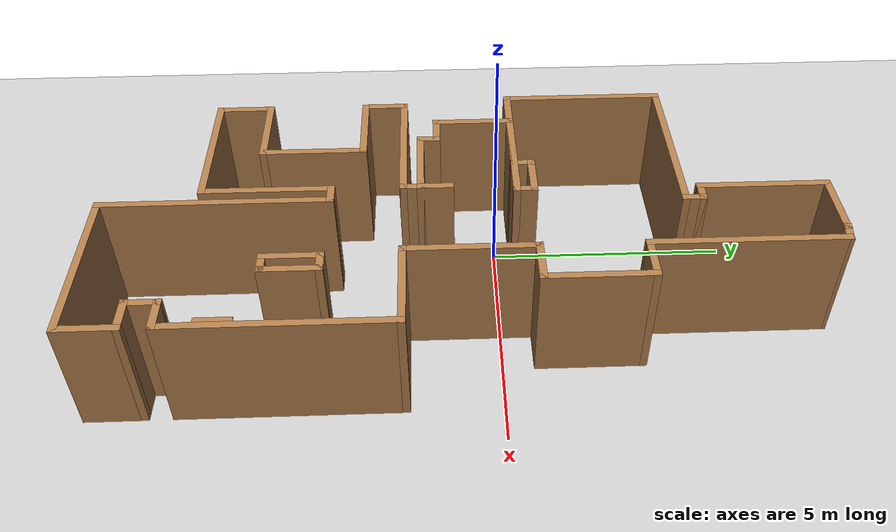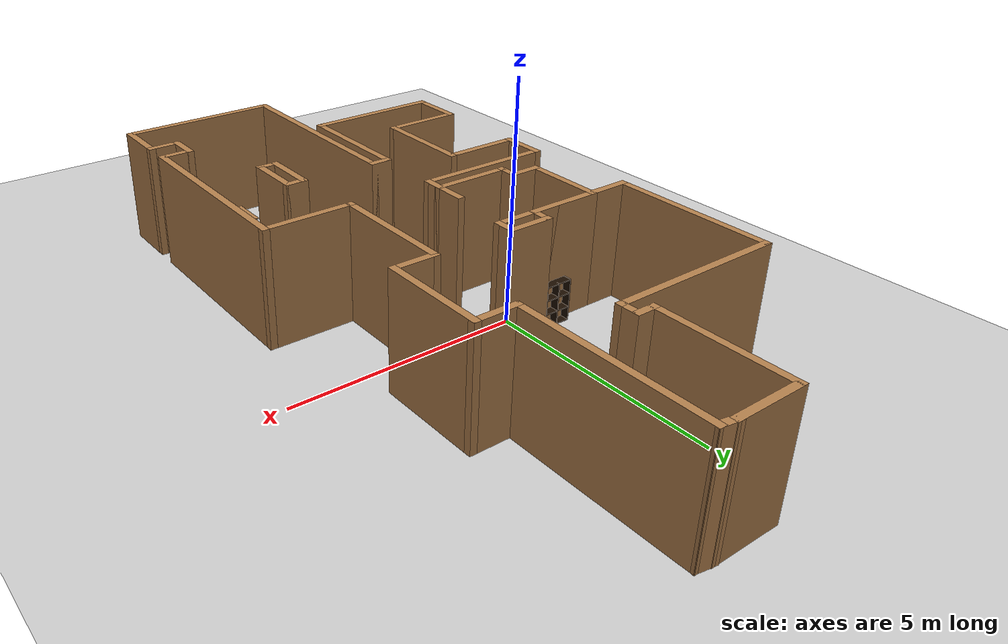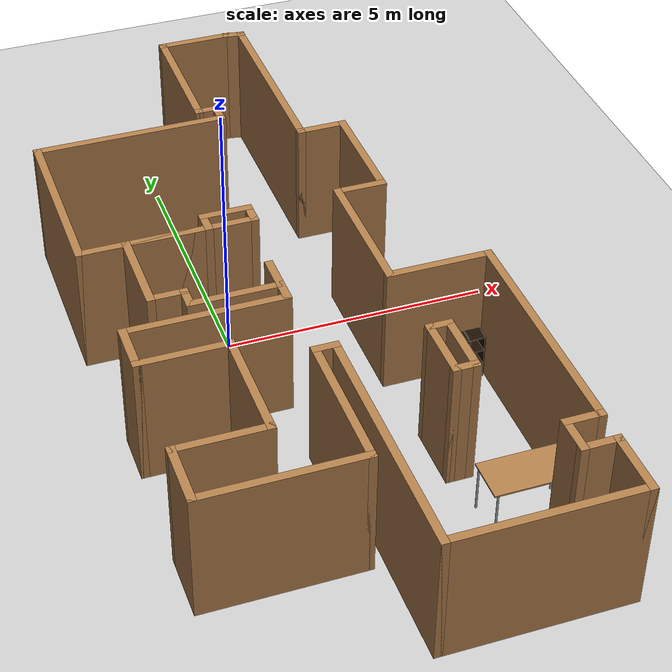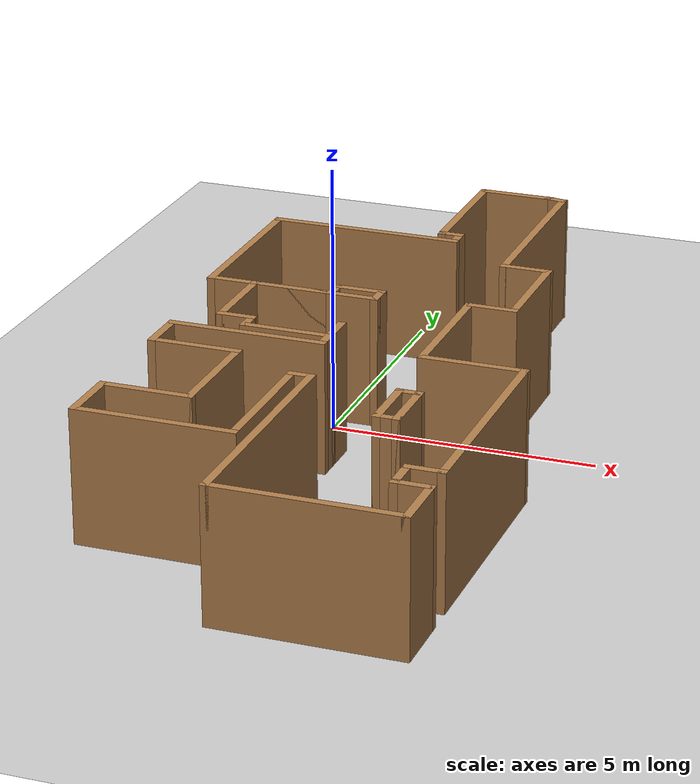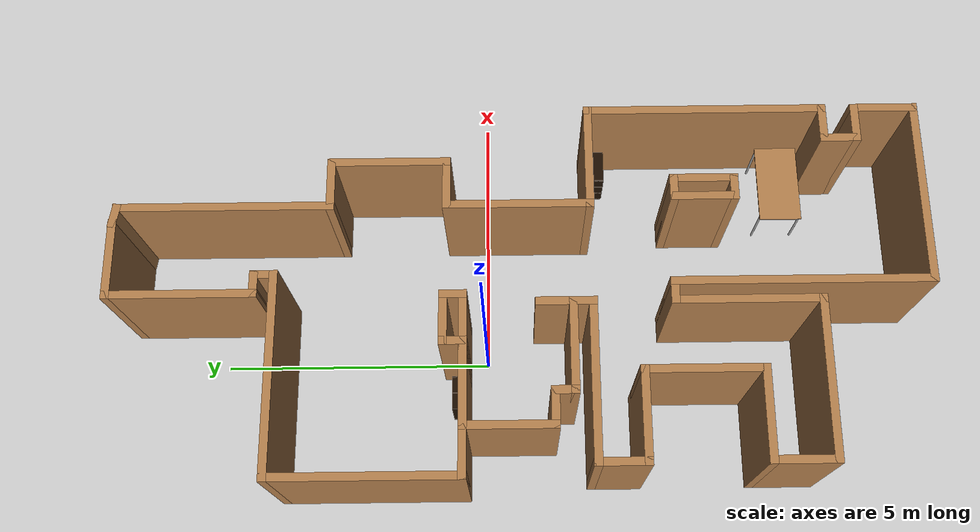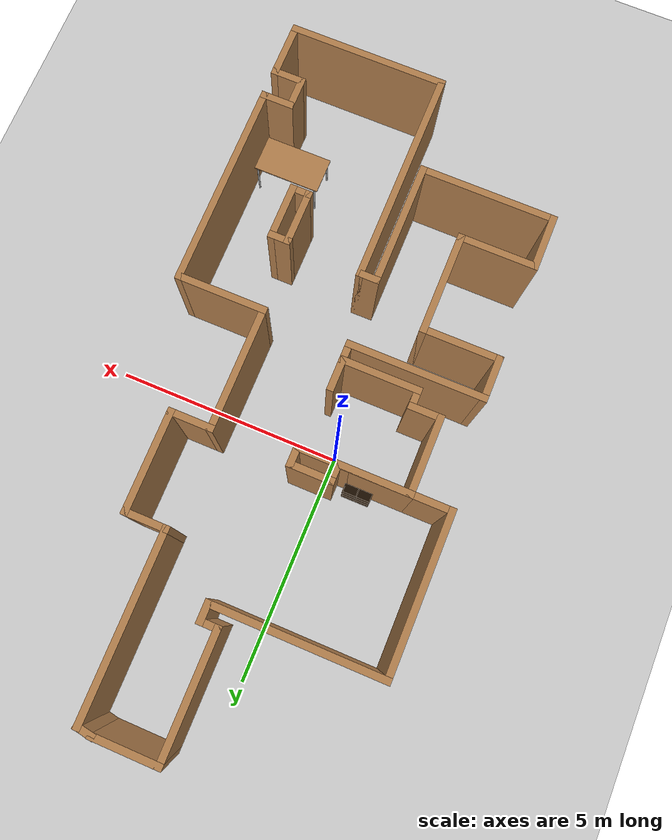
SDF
<sdf version="1.6">
 <world name="default">
  <light name="sun" type="directional">
   <pose>0 0 10 0 -0 0</pose>
   <diffuse>0.8 0.8 0.8 1</diffuse>
   <specular>0.2 0.2 0.2 1</specular>
   <attenuation>
    <range>1000</range>
    <constant>0.9</constant>
    <linear>0.01</linear>
    <quadratic>0.001</quadratic>
   </attenuation>
   <direction>-0.5 0.1 -0.9</direction>
  </light>
  <model name="ground_plane">
   <static>1</static>
   <link name="link">
    <collision name="collision">
     <geometry><plane><normal>0 0 1</normal><size>100 100</size></plane></geometry>
     <surface>
      <contact><collide_bitmask>65535</collide_bitmask></contact>
      <friction><ode><mu>100</mu><mu2>50</mu2></ode></friction>
     </surface>
    </collision>
    <visual name="visual">
     <cast_shadows>0</cast_shadows>
     <geometry><plane><normal>0 0 1</normal><size>100 100</size></plane></geometry>
     <material>
      <script><uri>file://media/materials/scripts/gazebo.material</uri><name>Gazebo/Grey</name></script>
     </material>
    </visual>
   </link>
  </model>
  <gravity>0 0 -9.8</gravity>
  <magnetic_field>6e-06 2.3e-05 -4.2e-05</magnetic_field>
  <atmosphere type="adiabatic"/>
  <physics name="default_physics" default="0" type="ode">
   <max_step_size>0.001</max_step_size>
   <real_time_factor>1</real_time_factor>
   <real_time_update_rate>1000</real_time_update_rate>
  </physics>
  <scene><ambient>0.4 0.4 0.4 1</ambient><background>0.7 0.7 0.7 1</background><shadows>1</shadows></scene>
  <audio><device>default</device></audio>
  <spherical_coordinates>
   <surface_model>EARTH_WGS84</surface_model>
   <latitude_deg>0</latitude_deg>
   <longitude_deg>0</longitude_deg>
   <elevation>0</elevation>
   <heading_deg>0</heading_deg>
  </spherical_coordinates>
  <model name="map_93">
   <pose>0.83846 -0.619151 0 0 -0 0</pose>
   <link name="Wall_0">
    <collision name="Wall_0_Collision">
     <geometry><box><size>1.5 0.15 2.5</size></box></geometry>
     <pose>0 0 1.25 0 -0 0</pose>
    </collision>
    <visual name="Wall_0_Visual">
     <pose>0 0 1.25 0 -0 0</pose>
     <geometry><box><size>1.5 0.15 2.5</size></box></geometry>
     <material>
      <script><uri>file://media/materials/scripts/gazebo.material</uri><name>Gazebo/Wood</name></script>
      <ambient>1 1 1 1</ambient>
     </material>
     <meta><layer>0</layer></meta>
    </visual>
    <pose>0.55 7.31935 0 0 -0 3.14159</pose>
   </link>
   <link name="Wall_1">
    <collision name="Wall_1_Collision">
     <geometry><box><size>2.75 0.15 2.5</size></box></geometry>
     <pose>0 0 1.25 0 -0 0</pose>
    </collision>
    <visual name="Wall_1_Visual">
     <pose>0 0 1.25 0 -0 0</pose>
     <geometry><box><size>2.75 0.15 2.5</size></box></geometry>
     <material>
      <script><uri>file://media/materials/scripts/gazebo.material</uri><name>Gazebo/Wood</name></script>
      <ambient>1 1 1 1</ambient>
     </material>
     <meta><layer>0</layer></meta>
    </visual>
    <pose>-0.125 6.01935 0 0 -0 -1.5708</pose>
   </link>
   <link name="Wall_10">
    <collision name="Wall_10_Collision">
     <geometry><box><size>1 0.15 2.5</size></box></geometry>
     <pose>0 0 1.25 0 -0 0</pose>
    </collision>
    <visual name="Wall_10_Visual">
     <pose>0 0 1.25 0 -0 0</pose>
     <geometry><box><size>1 0.15 2.5</size></box></geometry>
     <material>
      <script><uri>file://media/materials/scripts/gazebo.material</uri><name>Gazebo/Wood</name></script>
      <ambient>1 1 1 1</ambient>
     </material>
     <meta><layer>0</layer></meta>
    </visual>
    <pose>-0.6 1.36935 0 0 -0 0</pose>
   </link>
   <link name="Wall_11">
    <collision name="Wall_11_Collision">
     <geometry><box><size>0.5 0.15 2.5</size></box></geometry>
     <pose>0 0 1.25 0 -0 0</pose>
    </collision>
    <visual name="Wall_11_Visual">
     <pose>0 0 1.25 0 -0 0</pose>
     <geometry><box><size>0.5 0.15 2.5</size></box></geometry>
     <material>
      <script><uri>file://media/materials/scripts/gazebo.material</uri><name>Gazebo/Wood</name></script>
      <ambient>1 1 1 1</ambient>
     </material>
     <meta><layer>0</layer></meta>
    </visual>
    <pose>-0.175 1.19434 0 0 -0 -1.5708</pose>
   </link>
   <link name="Wall_12">
    <collision name="Wall_12_Collision">
     <geometry><box><size>2.5 0.15 2.5</size></box></geometry>
     <pose>0 0 1.25 0 -0 0</pose>
    </collision>
    <visual name="Wall_12_Visual">
     <pose>0 0 1.25 0 -0 0</pose>
     <geometry><box><size>2.5 0.15 2.5</size></box></geometry>
     <material>
      <script><uri>file://media/materials/scripts/gazebo.material</uri><name>Gazebo/Wood</name></script>
      <ambient>1 1 1 1</ambient>
     </material>
     <meta><layer>0</layer></meta>
    </visual>
    <pose>-1.35 1.01935 0 0 -0 3.14159</pose>
   </link>
   <link name="Wall_13">
    <collision name="Wall_13_Collision">
     <geometry><box><size>1.75 0.15 2.5</size></box></geometry>
     <pose>0 0 1.25 0 -0 0</pose>
    </collision>
    <visual name="Wall_13_Visual">
     <pose>0 0 1.25 0 -0 0</pose>
     <geometry><box><size>1.75 0.15 2.5</size></box></geometry>
     <material>
      <script><uri>file://media/materials/scripts/gazebo.material</uri><name>Gazebo/Wood</name></script>
      <ambient>1 1 1 1</ambient>
     </material>
     <meta><layer>0</layer></meta>
    </visual>
    <pose>-2.525 0.219345 0 0 -0 -1.5708</pose>
   </link>
   <link name="Wall_14">
    <collision name="Wall_14_Collision">
     <geometry><box><size>0.75 0.15 2.5</size></box></geometry>
     <pose>0 0 1.25 0 -0 0</pose>
    </collision>
    <visual name="Wall_14_Visual">
     <pose>0 0 1.25 0 -0 0</pose>
     <geometry><box><size>0.75 0.15 2.5</size></box></geometry>
     <material>
      <script><uri>file://media/materials/scripts/gazebo.material</uri><name>Gazebo/Wood</name></script>
      <ambient>1 1 1 1</ambient>
     </material>
     <meta><layer>0</layer></meta>
    </visual>
    <pose>-2.225 -0.580654 0 0 -0 0</pose>
   </link>
   <link name="Wall_15">
    <collision name="Wall_15_Collision">
     <geometry><box><size>0.5 0.15 2.5</size></box></geometry>
     <pose>0 0 1.25 0 -0 0</pose>
    </collision>
    <visual name="Wall_15_Visual">
     <pose>0 0 1.25 0 -0 0</pose>
     <geometry><box><size>0.5 0.15 2.5</size></box></geometry>
     <material>
      <script><uri>file://media/materials/scripts/gazebo.material</uri><name>Gazebo/Wood</name></script>
      <ambient>1 1 1 1</ambient>
     </material>
     <meta><layer>0</layer></meta>
    </visual>
    <pose>-1.925 -0.755655 0 0 -0 -1.5708</pose>
   </link>
   <link name="Wall_16">
    <collision name="Wall_16_Collision">
     <geometry><box><size>1.75 0.15 2.5</size></box></geometry>
     <pose>0 0 1.25 0 -0 0</pose>
    </collision>
    <visual name="Wall_16_Visual">
     <pose>0 0 1.25 0 -0 0</pose>
     <geometry><box><size>1.75 0.15 2.5</size></box></geometry>
     <material>
      <script><uri>file://media/materials/scripts/gazebo.material</uri><name>Gazebo/Wood</name></script>
      <ambient>1 1 1 1</ambient>
     </material>
     <meta><layer>0</layer></meta>
    </visual>
    <pose>-1.125 -0.930655 0 0 -0 0</pose>
   </link>
   <link name="Wall_17">
    <collision name="Wall_17_Collision">
     <geometry><box><size>0.75 0.15 2.5</size></box></geometry>
     <pose>0 0 1.25 0 -0 0</pose>
    </collision>
    <visual name="Wall_17_Visual">
     <pose>0 0 1.25 0 -0 0</pose>
     <geometry><box><size>0.75 0.15 2.5</size></box></geometry>
     <material>
      <script><uri>file://media/materials/scripts/gazebo.material</uri><name>Gazebo/Wood</name></script>
      <ambient>1 1 1 1</ambient>
     </material>
     <meta><layer>0</layer></meta>
    </visual>
    <pose>-0.325 -0.630655 0 0 -0 1.5708</pose>
   </link>
   <link name="Wall_19">
    <collision name="Wall_19_Collision">
     <geometry><box><size>0.5 0.15 2.5</size></box></geometry>
     <pose>0 0 1.25 0 -0 0</pose>
    </collision>
    <visual name="Wall_19_Visual">
     <pose>0 0 1.25 0 -0 0</pose>
     <geometry><box><size>0.5 0.15 2.5</size></box></geometry>
     <material>
      <script><uri>file://media/materials/scripts/gazebo.material</uri><name>Gazebo/Wood</name></script>
      <ambient>1 1 1 1</ambient>
     </material>
     <meta><layer>0</layer></meta>
    </visual>
    <pose>-0.325 -1.10565 0 0 -0 -1.5708</pose>
   </link>
   <link name="Wall_2">
    <collision name="Wall_2_Collision">
     <geometry><box><size>0.5 0.15 2.5</size></box></geometry>
     <pose>0 0 1.25 0 -0 0</pose>
    </collision>
    <visual name="Wall_2_Visual">
     <pose>0 0 1.25 0 -0 0</pose>
     <geometry><box><size>0.5 0.15 2.5</size></box></geometry>
     <material>
      <script><uri>file://media/materials/scripts/gazebo.material</uri><name>Gazebo/Wood</name></script>
      <ambient>1 1 1 1</ambient>
     </material>
     <meta><layer>0</layer></meta>
    </visual>
    <pose>0.05 4.71935 0 0 -0 0</pose>
   </link>
   <link name="Wall_20">
    <collision name="Wall_20_Collision">
     <geometry><box><size>3 0.15 2.5</size></box></geometry>
     <pose>0 0 1.25 0 -0 0</pose>
    </collision>
    <visual name="Wall_20_Visual">
     <pose>0 0 1.25 0 -0 0</pose>
     <geometry><box><size>3 0.15 2.5</size></box></geometry>
     <material>
      <script><uri>file://media/materials/scripts/gazebo.material</uri><name>Gazebo/Wood</name></script>
      <ambient>1 1 1 1</ambient>
     </material>
     <meta><layer>0</layer></meta>
    </visual>
    <pose>-1.75 -1.28066 0 0 -0 3.14159</pose>
   </link>
   <link name="Wall_21">
    <collision name="Wall_21_Collision">
     <geometry><box><size>1 0.15 2.5</size></box></geometry>
     <pose>0 0 1.25 0 -0 0</pose>
    </collision>
    <visual name="Wall_21_Visual">
     <pose>0 0 1.25 0 -0 0</pose>
     <geometry><box><size>1 0.15 2.5</size></box></geometry>
     <material>
      <script><uri>file://media/materials/scripts/gazebo.material</uri><name>Gazebo/Wood</name></script>
      <ambient>1 1 1 1</ambient>
     </material>
     <meta><layer>0</layer></meta>
    </visual>
    <pose>-3.175 -1.70565 0 0 -0 -1.5708</pose>
   </link>
   <link name="Wall_22">
    <collision name="Wall_22_Collision">
     <geometry><box><size>1.75 0.15 2.5</size></box></geometry>
     <pose>0 0 1.25 0 -0 0</pose>
    </collision>
    <visual name="Wall_22_Visual">
     <pose>0 0 1.25 0 -0 0</pose>
     <geometry><box><size>1.75 0.15 2.5</size></box></geometry>
     <material>
      <script><uri>file://media/materials/scripts/gazebo.material</uri><name>Gazebo/Wood</name></script>
      <ambient>1 1 1 1</ambient>
     </material>
     <meta><layer>0</layer></meta>
    </visual>
    <pose>-2.375 -2.13065 0 0 -0 0</pose>
   </link>
   <link name="Wall_23">
    <collision name="Wall_23_Collision">
     <geometry><box><size>2.25 0.15 2.5</size></box></geometry>
     <pose>0 0 1.25 0 -0 0</pose>
    </collision>
    <visual name="Wall_23_Visual">
     <pose>0 0 1.25 0 -0 0</pose>
     <geometry><box><size>2.25 0.15 2.5</size></box></geometry>
     <material>
      <script><uri>file://media/materials/scripts/gazebo.material</uri><name>Gazebo/Wood</name></script>
      <ambient>1 1 1 1</ambient>
     </material>
     <meta><layer>0</layer></meta>
    </visual>
    <pose>-1.575 -3.18065 0 0 -0 -1.5708</pose>
   </link>
   <link name="Wall_24">
    <collision name="Wall_24_Collision">
     <geometry><box><size>1.75 0.15 2.5</size></box></geometry>
     <pose>0 0 1.25 0 -0 0</pose>
    </collision>
    <visual name="Wall_24_Visual">
     <pose>0 0 1.25 0 -0 0</pose>
     <geometry><box><size>1.75 0.15 2.5</size></box></geometry>
     <material>
      <script><uri>file://media/materials/scripts/gazebo.material</uri><name>Gazebo/Wood</name></script>
      <ambient>1 1 1 1</ambient>
     </material>
     <meta><layer>0</layer></meta>
    </visual>
    <pose>-2.375 -4.23065 0 0 -0 3.14159</pose>
   </link>
   <link name="Wall_25">
    <collision name="Wall_25_Collision">
     <geometry><box><size>1.25 0.15 2.5</size></box></geometry>
     <pose>0 0 1.25 0 -0 0</pose>
    </collision>
    <visual name="Wall_25_Visual">
     <pose>0 0 1.25 0 -0 0</pose>
     <geometry><box><size>1.25 0.15 2.5</size></box></geometry>
     <material>
      <script><uri>file://media/materials/scripts/gazebo.material</uri><name>Gazebo/Wood</name></script>
      <ambient>1 1 1 1</ambient>
     </material>
     <meta><layer>0</layer></meta>
    </visual>
    <pose>-3.175 -4.78065 0 0 -0 -1.5708</pose>
   </link>
   <link name="Wall_26">
    <collision name="Wall_26_Collision">
     <geometry><box><size>3 0.15 2.5</size></box></geometry>
     <pose>0 0 1.25 0 -0 0</pose>
    </collision>
    <visual name="Wall_26_Visual">
     <pose>0 0 1.25 0 -0 0</pose>
     <geometry><box><size>3 0.15 2.5</size></box></geometry>
     <material>
      <script><uri>file://media/materials/scripts/gazebo.material</uri><name>Gazebo/Wood</name></script>
      <ambient>1 1 1 1</ambient>
     </material>
     <meta><layer>0</layer></meta>
    </visual>
    <pose>-1.75 -5.33066 0 0 -0 0</pose>
   </link>
   <link name="Wall_27">
    <collision name="Wall_27_Collision">
     <geometry><box><size>2.75 0.15 2.5</size></box></geometry>
     <pose>0 0 1.25 0 -0 0</pose>
    </collision>
    <visual name="Wall_27_Visual">
     <pose>0 0 1.25 0 -0 0</pose>
     <geometry><box><size>2.75 0.15 2.5</size></box></geometry>
     <material>
      <script><uri>file://media/materials/scripts/gazebo.material</uri><name>Gazebo/Wood</name></script>
      <ambient>1 1 1 1</ambient>
     </material>
     <meta><layer>0</layer></meta>
    </visual>
    <pose>-0.325 -4.03066 0 0 -0 1.5708</pose>
   </link>
   <link name="Wall_28">
    <collision name="Wall_28_Collision">
     <geometry><box><size>0.5 0.15 2.5</size></box></geometry>
     <pose>0 0 1.25 0 -0 0</pose>
    </collision>
    <visual name="Wall_28_Visual">
     <pose>0 0 1.25 0 -0 0</pose>
     <geometry><box><size>0.5 0.15 2.5</size></box></geometry>
     <material>
      <script><uri>file://media/materials/scripts/gazebo.material</uri><name>Gazebo/Wood</name></script>
      <ambient>1 1 1 1</ambient>
     </material>
     <meta><layer>0</layer></meta>
    </visual>
    <pose>-0.15 -2.73065 0 0 -0 0</pose>
   </link>
   <link name="Wall_29">
    <collision name="Wall_29_Collision">
     <geometry><box><size>4.75 0.15 2.5</size></box></geometry>
     <pose>0 0 1.25 0 -0 0</pose>
    </collision>
    <visual name="Wall_29_Visual">
     <pose>0 0 1.25 0 -0 0</pose>
     <geometry><box><size>4.75 0.15 2.5</size></box></geometry>
     <material>
      <script><uri>file://media/materials/scripts/gazebo.material</uri><name>Gazebo/Wood</name></script>
      <ambient>1 1 1 1</ambient>
     </material>
     <meta><layer>0</layer></meta>
    </visual>
    <pose>0.025 -5.03065 0 0 -0 -1.5708</pose>
   </link>
   <link name="Wall_3">
    <collision name="Wall_3_Collision">
     <geometry><box><size>0.5 0.15 2.5</size></box></geometry>
     <pose>0 0 1.25 0 -0 0</pose>
    </collision>
    <visual name="Wall_3_Visual">
     <pose>0 0 1.25 0 -0 0</pose>
     <geometry><box><size>0.5 0.15 2.5</size></box></geometry>
     <material>
      <script><uri>file://media/materials/scripts/gazebo.material</uri><name>Gazebo/Wood</name></script>
      <ambient>1 1 1 1</ambient>
     </material>
     <meta><layer>0</layer></meta>
    </visual>
    <pose>0.225 4.54435 0 0 -0 -1.5708</pose>
   </link>
   <link name="Wall_30">
    <collision name="Wall_30_Collision">
     <geometry><box><size>3.5 0.15 2.5</size></box></geometry>
     <pose>0 0 1.25 0 -0 0</pose>
    </collision>
    <visual name="Wall_30_Visual">
     <pose>0 0 1.25 0 -0 0</pose>
     <geometry><box><size>3.5 0.15 2.5</size></box></geometry>
     <material>
      <script><uri>file://media/materials/scripts/gazebo.material</uri><name>Gazebo/Wood</name></script>
      <ambient>1 1 1 1</ambient>
     </material>
     <meta><layer>0</layer></meta>
    </visual>
    <pose>1.7 -7.33065 0 0 -0 0</pose>
   </link>
   <link name="Wall_31">
    <collision name="Wall_31_Collision">
     <geometry><box><size>1.25 0.15 2.5</size></box></geometry>
     <pose>0 0 1.25 0 -0 0</pose>
    </collision>
    <visual name="Wall_31_Visual">
     <pose>0 0 1.25 0 -0 0</pose>
     <geometry><box><size>1.25 0.15 2.5</size></box></geometry>
     <material>
      <script><uri>file://media/materials/scripts/gazebo.material</uri><name>Gazebo/Wood</name></script>
      <ambient>1 1 1 1</ambient>
     </material>
     <meta><layer>0</layer></meta>
    </visual>
    <pose>3.375 -6.78065 0 0 -0 1.5708</pose>
   </link>
   <link name="Wall_32">
    <collision name="Wall_32_Collision">
     <geometry><box><size>0.75 0.15 2.5</size></box></geometry>
     <pose>0 0 1.25 0 -0 0</pose>
    </collision>
    <visual name="Wall_32_Visual">
     <pose>0 0 1.25 0 -0 0</pose>
     <geometry><box><size>0.75 0.15 2.5</size></box></geometry>
     <material>
      <script><uri>file://media/materials/scripts/gazebo.material</uri><name>Gazebo/Wood</name></script>
      <ambient>1 1 1 1</ambient>
     </material>
     <meta><layer>0</layer></meta>
    </visual>
    <pose>3.075 -6.23065 0 0 -0 3.14159</pose>
   </link>
   <link name="Wall_33">
    <collision name="Wall_33_Collision">
     <geometry><box><size>0.75 0.15 2.5</size></box></geometry>
     <pose>0 0 1.25 0 -0 0</pose>
    </collision>
    <visual name="Wall_33_Visual">
     <pose>0 0 1.25 0 -0 0</pose>
     <geometry><box><size>0.75 0.15 2.5</size></box></geometry>
     <material>
      <script><uri>file://media/materials/scripts/gazebo.material</uri><name>Gazebo/Wood</name></script>
      <ambient>1 1 1 1</ambient>
     </material>
     <meta><layer>0</layer></meta>
    </visual>
    <pose>2.775 -5.93065 0 0 -0 1.5708</pose>
   </link>
   <link name="Wall_34">
    <collision name="Wall_34_Collision">
     <geometry><box><size>0.75 0.15 2.5</size></box></geometry>
     <pose>0 0 1.25 0 -0 0</pose>
    </collision>
    <visual name="Wall_34_Visual">
     <pose>0 0 1.25 0 -0 0</pose>
     <geometry><box><size>0.75 0.15 2.5</size></box></geometry>
     <material>
      <script><uri>file://media/materials/scripts/gazebo.material</uri><name>Gazebo/Wood</name></script>
      <ambient>1 1 1 1</ambient>
     </material>
     <meta><layer>0</layer></meta>
    </visual>
    <pose>3.075 -5.63065 0 0 -0 0</pose>
   </link>
   <link name="Wall_35">
    <collision name="Wall_35_Collision">
     <geometry><box><size>4.5 0.15 2.5</size></box></geometry>
     <pose>0 0 1.25 0 -0 0</pose>
    </collision>
    <visual name="Wall_35_Visual">
     <pose>0 0 1.25 0 -0 0</pose>
     <geometry><box><size>4.5 0.15 2.5</size></box></geometry>
     <material>
      <script><uri>file://media/materials/scripts/gazebo.material</uri><name>Gazebo/Wood</name></script>
      <ambient>1 1 1 1</ambient>
     </material>
     <meta><layer>0</layer></meta>
    </visual>
    <pose>3.375 -3.45566 0 0 -0 1.5708</pose>
   </link>
   <link name="Wall_36">
    <collision name="Wall_36_Collision">
     <geometry><box><size>2 0.15 2.5</size></box></geometry>
     <pose>0 0 1.25 0 -0 0</pose>
    </collision>
    <visual name="Wall_36_Visual">
     <pose>0 0 1.25 0 -0 0</pose>
     <geometry><box><size>2 0.15 2.5</size></box></geometry>
     <material>
      <script><uri>file://media/materials/scripts/gazebo.material</uri><name>Gazebo/Wood</name></script>
      <ambient>1 1 1 1</ambient>
     </material>
     <meta><layer>0</layer></meta>
    </visual>
    <pose>2.45 -1.28066 0 0 -0 3.14159</pose>
   </link>
   <link name="Wall_37">
    <collision name="Wall_37_Collision">
     <geometry><box><size>2.75 0.15 2.5</size></box></geometry>
     <pose>0 0 1.25 0 -0 0</pose>
    </collision>
    <visual name="Wall_37_Visual">
     <pose>0 0 1.25 0 -0 0</pose>
     <geometry><box><size>2.75 0.15 2.5</size></box></geometry>
     <material>
      <script><uri>file://media/materials/scripts/gazebo.material</uri><name>Gazebo/Wood</name></script>
      <ambient>1 1 1 1</ambient>
     </material>
     <meta><layer>0</layer></meta>
    </visual>
    <pose>1.525 0.019346 0 0 -0 1.5708</pose>
   </link>
   <link name="Wall_38">
    <collision name="Wall_38_Collision">
     <geometry><box><size>1 0.15 2.5</size></box></geometry>
     <pose>0 0 1.25 0 -0 0</pose>
    </collision>
    <visual name="Wall_38_Visual">
     <pose>0 0 1.25 0 -0 0</pose>
     <geometry><box><size>1 0.15 2.5</size></box></geometry>
     <material>
      <script><uri>file://media/materials/scripts/gazebo.material</uri><name>Gazebo/Wood</name></script>
      <ambient>1 1 1 1</ambient>
     </material>
     <meta><layer>0</layer></meta>
    </visual>
    <pose>1.95 1.31934 0 0 -0 0</pose>
   </link>
   <link name="Wall_39">
    <collision name="Wall_39_Collision">
     <geometry><box><size>2.25 0.15 2.5</size></box></geometry>
     <pose>0 0 1.25 0 -0 0</pose>
    </collision>
    <visual name="Wall_39_Visual">
     <pose>0 0 1.25 0 -0 0</pose>
     <geometry><box><size>2.25 0.15 2.5</size></box></geometry>
     <material>
      <script><uri>file://media/materials/scripts/gazebo.material</uri><name>Gazebo/Wood</name></script>
      <ambient>1 1 1 1</ambient>
     </material>
     <meta><layer>0</layer></meta>
    </visual>
    <pose>2.375 2.36935 0 0 -0 1.5708</pose>
   </link>
   <link name="Wall_4">
    <collision name="Wall_4_Collision">
     <geometry><box><size>3.75 0.15 2.5</size></box></geometry>
     <pose>0 0 1.25 0 -0 0</pose>
    </collision>
    <visual name="Wall_4_Visual">
     <pose>0 0 1.25 0 -0 0</pose>
     <geometry><box><size>3.75 0.15 2.5</size></box></geometry>
     <material>
      <script><uri>file://media/materials/scripts/gazebo.material</uri><name>Gazebo/Wood</name></script>
      <ambient>1 1 1 1</ambient>
     </material>
     <meta><layer>0</layer></meta>
    </visual>
    <pose>-1.575 4.36935 0 0 -0 3.14159</pose>
   </link>
   <link name="Wall_40">
    <collision name="Wall_40_Collision">
     <geometry><box><size>1 0.15 2.5</size></box></geometry>
     <pose>0 0 1.25 0 -0 0</pose>
    </collision>
    <visual name="Wall_40_Visual">
     <pose>0 0 1.25 0 -0 0</pose>
     <geometry><box><size>1 0.15 2.5</size></box></geometry>
     <material>
      <script><uri>file://media/materials/scripts/gazebo.material</uri><name>Gazebo/Wood</name></script>
      <ambient>1 1 1 1</ambient>
     </material>
     <meta><layer>0</layer></meta>
    </visual>
    <pose>1.95 3.41935 0 0 -0 3.14159</pose>
   </link>
   <link name="Wall_41">
    <collision name="Wall_41_Collision">
     <geometry><box><size>4 0.15 2.5</size></box></geometry>
     <pose>0 0 1.25 0 -0 0</pose>
    </collision>
    <visual name="Wall_41_Visual">
     <pose>0 0 1.25 0 -0 0</pose>
     <geometry><box><size>4 0.15 2.5</size></box></geometry>
     <material>
      <script><uri>file://media/materials/scripts/gazebo.material</uri><name>Gazebo/Wood</name></script>
      <ambient>1 1 1 1</ambient>
     </material>
     <meta><layer>0</layer></meta>
    </visual>
    <pose>1.525 5.34435 0 0 -0 1.5708</pose>
   </link>
   <link name="Wall_42">
    <collision name="Wall_42_Collision">
     <geometry><box><size>0.454138 0.15 2.5</size></box></geometry>
     <pose>0 0 1.25 0 -0 0</pose>
    </collision>
    <visual name="Wall_42_Visual">
     <pose>0 0 1.25 0 -0 0</pose>
     <geometry><box><size>0.454138 0.15 2.5</size></box></geometry>
     <material>
      <script><uri>file://media/materials/scripts/gazebo.material</uri><name>Gazebo/Wood</name></script>
      <ambient>1 1 1 1</ambient>
     </material>
     <meta><layer>0</layer></meta>
    </visual>
    <pose>1.375 7.29435 0 0 -0 2.97644</pose>
   </link>
   <link name="Wall_44">
    <collision name="Wall_44_Collision">
     <geometry><box><size>1.25 0.15 2.5</size></box></geometry>
     <pose>0 0 1.25 0 -0 0</pose>
    </collision>
    <visual name="Wall_44_Visual">
     <pose>0 0 1.25 0 -0 0</pose>
     <geometry><box><size>1.25 0.15 2.5</size></box></geometry>
     <material>
      <script><uri>file://media/materials/scripts/gazebo.material</uri><name>Gazebo/Wood</name></script>
      <ambient>1 1 1 1</ambient>
     </material>
     <meta><layer>0</layer></meta>
    </visual>
    <pose>1.64715 -3.36214 0 0 -0 -1.5708</pose>
   </link>
   <link name="Wall_45">
    <collision name="Wall_45_Collision">
     <geometry><box><size>0.5 0.15 2.5</size></box></geometry>
     <pose>0 0 1.25 0 -0 0</pose>
    </collision>
    <visual name="Wall_45_Visual">
     <pose>0 0 1.25 0 -0 0</pose>
     <geometry><box><size>0.5 0.15 2.5</size></box></geometry>
     <material>
      <script><uri>file://media/materials/scripts/gazebo.material</uri><name>Gazebo/Wood</name></script>
      <ambient>1 1 1 1</ambient>
     </material>
     <meta><layer>0</layer></meta>
    </visual>
    <pose>1.82214 -3.91214 0 0 -0 0</pose>
   </link>
   <link name="Wall_46">
    <collision name="Wall_46_Collision">
     <geometry><box><size>1.25 0.15 2.5</size></box></geometry>
     <pose>0 0 1.25 0 -0 0</pose>
    </collision>
    <visual name="Wall_46_Visual">
     <pose>0 0 1.25 0 -0 0</pose>
     <geometry><box><size>1.25 0.15 2.5</size></box></geometry>
     <material>
      <script><uri>file://media/materials/scripts/gazebo.material</uri><name>Gazebo/Wood</name></script>
      <ambient>1 1 1 1</ambient>
     </material>
     <meta><layer>0</layer></meta>
    </visual>
    <pose>1.99714 -3.36214 0 0 -0 1.5708</pose>
   </link>
   <link name="Wall_47">
    <collision name="Wall_47_Collision">
     <geometry><box><size>0.5 0.15 2.5</size></box></geometry>
     <pose>0 0 1.25 0 -0 0</pose>
    </collision>
    <visual name="Wall_47_Visual">
     <pose>0 0 1.25 0 -0 0</pose>
     <geometry><box><size>0.5 0.15 2.5</size></box></geometry>
     <material>
      <script><uri>file://media/materials/scripts/gazebo.material</uri><name>Gazebo/Wood</name></script>
      <ambient>1 1 1 1</ambient>
     </material>
     <meta><layer>0</layer></meta>
    </visual>
    <pose>1.82214 -2.81214 0 0 -0 3.14159</pose>
   </link>
   <link name="Wall_5">
    <collision name="Wall_5_Collision">
     <geometry><box><size>3.5 0.15 2.5</size></box></geometry>
     <pose>0 0 1.25 0 -0 0</pose>
    </collision>
    <visual name="Wall_5_Visual">
     <pose>0 0 1.25 0 -0 0</pose>
     <geometry><box><size>3.5 0.15 2.5</size></box></geometry>
     <material>
      <script><uri>file://media/materials/scripts/gazebo.material</uri><name>Gazebo/Wood</name></script>
      <ambient>1 1 1 1</ambient>
     </material>
     <meta><layer>0</layer></meta>
    </visual>
    <pose>-3.375 2.69435 0 0 -0 -1.5708</pose>
   </link>
   <link name="Wall_6">
    <collision name="Wall_6_Collision">
     <geometry><box><size>2.5 0.15 2.5</size></box></geometry>
     <pose>0 0 1.25 0 -0 0</pose>
    </collision>
    <visual name="Wall_6_Visual">
     <pose>0 0 1.25 0 -0 0</pose>
     <geometry><box><size>2.5 0.15 2.5</size></box></geometry>
     <material>
      <script><uri>file://media/materials/scripts/gazebo.material</uri><name>Gazebo/Wood</name></script>
      <ambient>1 1 1 1</ambient>
     </material>
     <meta><layer>0</layer></meta>
    </visual>
    <pose>-2.2 1.01935 0 0 -0 0</pose>
   </link>
   <link name="Wall_9">
    <collision name="Wall_9_Collision">
     <geometry><box><size>0.5 0.15 2.5</size></box></geometry>
     <pose>0 0 1.25 0 -0 0</pose>
    </collision>
    <visual name="Wall_9_Visual">
     <pose>0 0 1.25 0 -0 0</pose>
     <geometry><box><size>0.5 0.15 2.5</size></box></geometry>
     <material>
      <script><uri>file://media/materials/scripts/gazebo.material</uri><name>Gazebo/Wood</name></script>
      <ambient>1 1 1 1</ambient>
     </material>
     <meta><layer>0</layer></meta>
    </visual>
    <pose>-1.025 1.19434 0 0 -0 1.5708</pose>
   </link>
   <static>1</static>
  </model>
  <model name="table">
   <static>1</static>
   <link name="link">
    <collision name="surface">
     <pose>0 0 1 0 -0 0</pose>
     <geometry><box><size>1.5 0.8 0.03</size></box></geometry>
     <surface><friction><ode><mu>0.6</mu><mu2>0.6</mu2></ode></friction></surface>
    </collision>
    <visual name="visual1">
     <pose>0 0 1 0 -0 0</pose>
     <geometry><box><size>1.5 0.8 0.03</size></box></geometry>
     <material>
      <script><uri>file://media/materials/scripts/gazebo.material</uri><name>Gazebo/Wood</name></script>
     </material>
    </visual>
    <collision name="front_left_leg">
     <pose>0.68 0.38 0.5 0 -0 0</pose>
     <geometry><cylinder><radius>0.02</radius><length>1</length></cylinder></geometry>
    </collision>
    <visual name="front_left_leg">
     <pose>0.68 0.38 0.5 0 -0 0</pose>
     <geometry><cylinder><radius>0.02</radius><length>1</length></cylinder></geometry>
     <material>
      <script><uri>file://media/materials/scripts/gazebo.material</uri><name>Gazebo/Grey</name></script>
     </material>
    </visual>
    <collision name="front_right_leg">
     <pose>0.68 -0.38 0.5 0 -0 0</pose>
     <geometry><cylinder><radius>0.02</radius><length>1</length></cylinder></geometry>
    </collision>
    <visual name="front_right_leg">
     <pose>0.68 -0.38 0.5 0 -0 0</pose>
     <geometry><cylinder><radius>0.02</radius><length>1</length></cylinder></geometry>
     <material>
      <script><uri>file://media/materials/scripts/gazebo.material</uri><name>Gazebo/Grey</name></script>
     </material>
    </visual>
    <collision name="back_right_leg">
     <pose>-0.68 -0.38 0.5 0 -0 0</pose>
     <geometry><cylinder><radius>0.02</radius><length>1</length></cylinder></geometry>
    </collision>
    <visual name="back_right_leg">
     <pose>-0.68 -0.38 0.5 0 -0 0</pose>
     <geometry><cylinder><radius>0.02</radius><length>1</length></cylinder></geometry>
     <material>
      <script><uri>file://media/materials/scripts/gazebo.material</uri><name>Gazebo/Grey</name></script>
     </material>
    </visual>
    <collision name="back_left_leg">
     <pose>-0.68 0.38 0.5 0 -0 0</pose>
     <geometry><cylinder><radius>0.02</radius><length>1</length></cylinder></geometry>
    </collision>
    <visual name="back_left_leg">
     <pose>-0.68 0.38 0.5 0 -0 0</pose>
     <geometry><cylinder><radius>0.02</radius><length>1</length></cylinder></geometry>
     <material>
      <script><uri>file://media/materials/scripts/gazebo.material</uri><name>Gazebo/Grey</name></script>
     </material>
    </visual>
   </link>
   <pose>3.34662 -5.6679 0 0 -0 0</pose>
  </model>
  <model name="6_Cube_StorageE">
   <link name="Wall_0">
    <pose>0 0 0.01 0 -0 0</pose>
    <inertial>
     <mass>1.6201</mass>
     <inertia><ixx>0.0119</ixx><iyy>0.0631</iyy><izz>0.0513</izz><ixy>0</ixy><ixz>0</ixz><iyz>0</iyz></inertia>
    </inertial>
    <collision name="Wall_0_Collision"><geometry><box><size>0.616 0.296 0.02</size></box></geometry></collision>
    <visual name="Wall_0_Visual">
     <geometry><box><size>0.616 0.296 0.02</size></box></geometry>
     <material>
      <script><uri>file://media/materials/scripts/gazebo.material</uri><name>Gazebo/Grey</name></script>
      <ambient>0.105882 0.0509804 0 1</ambient>
     </material>
    </visual>
   </link>
   <joint name="0_2" type="fixed">
    <pose>-0.308 0 0 0 -0 0</pose>
    <parent>Wall_2</parent>
    <child>Wall_0</child>
    <axis>
     <xyz>1 0 0</xyz>
     <use_parent_model_frame>0</use_parent_model_frame>
     <limit><lower>-1e+16</lower><upper>1e+16</upper></limit>
    </axis>
   </joint>
   <joint name="0_12" type="fixed">
    <parent>Wall_12</parent>
    <child>Wall_0</child>
    <axis>
     <xyz>0 0 1</xyz>
     <use_parent_model_frame>0</use_parent_model_frame>
     <limit><lower>-1e+16</lower><upper>1e+16</upper></limit>
    </axis>
   </joint>
   <joint name="0_4" type="fixed">
    <pose>0.308 0 0 0 -0 0</pose>
    <parent>Wall_4</parent>
    <child>Wall_0</child>
    <axis>
     <xyz>1 0 0</xyz>
     <use_parent_model_frame>0</use_parent_model_frame>
     <limit><lower>-1e+16</lower><upper>1e+16</upper></limit>
    </axis>
   </joint>
   <link name="Wall_10">
    <pose>0 0 0.61 0 -0 0</pose>
    <inertial>
     <mass>1.6201</mass>
     <inertia><ixx>0.0119</ixx><iyy>0.0631</iyy><izz>0.0513</izz><ixy>0</ixy><ixz>0</ixz><iyz>0</iyz></inertia>
    </inertial>
    <collision name="Wall_10_Collision"><geometry><box><size>0.616 0.296 0.02</size></box></geometry></collision>
    <visual name="Wall_10_Visual">
     <geometry><box><size>0.616 0.296 0.02</size></box></geometry>
     <material>
      <script><uri>file://media/materials/scripts/gazebo.material</uri><name>Gazebo/Grey</name></script>
      <ambient>0.105882 0.0509804 0 1</ambient>
     </material>
    </visual>
   </link>
   <joint name="10_2" type="fixed">
    <pose>-0.308 0 0 0 -0 0</pose>
    <parent>Wall_2</parent>
    <child>Wall_10</child>
    <axis>
     <xyz>1 0 0</xyz>
     <use_parent_model_frame>0</use_parent_model_frame>
     <limit><lower>-1e+16</lower><upper>1e+16</upper></limit>
    </axis>
   </joint>
   <joint name="10_12" type="fixed">
    <parent>Wall_12</parent>
    <child>Wall_10</child>
    <axis>
     <xyz>0 0 1</xyz>
     <use_parent_model_frame>0</use_parent_model_frame>
     <limit><lower>-1e+16</lower><upper>1e+16</upper></limit>
    </axis>
   </joint>
   <joint name="10_4" type="fixed">
    <pose>0.308 0 0 0 -0 0</pose>
    <parent>Wall_4</parent>
    <child>Wall_10</child>
    <axis>
     <xyz>1 0 0</xyz>
     <use_parent_model_frame>0</use_parent_model_frame>
     <limit><lower>-1e+16</lower><upper>1e+16</upper></limit>
    </axis>
   </joint>
   <link name="Wall_12">
    <pose>0 0 0.4575 0 -0 0</pose>
    <inertial>
     <mass>2.4065</mass>
     <inertia><ixx>0.0177</ixx><iyy>0.1855</iyy><izz>0.168</izz><ixy>0</ixy><ixz>0</ixz><iyz>0</iyz></inertia>
    </inertial>
    <collision name="Wall_12_Collision"><geometry><box><size>0.02 0.296 0.915</size></box></geometry></collision>
    <visual name="Wall_12_Visual">
     <geometry><box><size>0.02 0.296 0.915</size></box></geometry>
     <material>
      <script><uri>file://media/materials/scripts/gazebo.material</uri><name>Gazebo/Grey</name></script>
      <ambient>0.105882 0.0509804 0 1</ambient>
     </material>
    </visual>
   </link>
   <link name="Wall_2">
    <pose>-0.298 0 0.4575 0 -0 0</pose>
    <inertial>
     <mass>2.4065</mass>
     <inertia><ixx>0.0177</ixx><iyy>0.1855</iyy><izz>0.168</izz><ixy>0</ixy><ixz>0</ixz><iyz>0</iyz></inertia>
    </inertial>
    <collision name="Wall_2_Collision"><geometry><box><size>0.02 0.296 0.915</size></box></geometry></collision>
    <visual name="Wall_2_Visual">
     <geometry><box><size>0.02 0.296 0.915</size></box></geometry>
     <material>
      <script><uri>file://media/materials/scripts/gazebo.material</uri><name>Gazebo/Grey</name></script>
      <ambient>0.105882 0.0509804 0 1</ambient>
     </material>
    </visual>
   </link>
   <link name="Wall_4">
    <pose>0.298 0 0.4575 0 -0 0</pose>
    <inertial>
     <mass>2.4065</mass>
     <inertia><ixx>0.0177</ixx><iyy>0.1855</iyy><izz>0.168</izz><ixy>0</ixy><ixz>0</ixz><iyz>0</iyz></inertia>
    </inertial>
    <collision name="Wall_4_Collision"><geometry><box><size>0.02 0.296 0.915</size></box></geometry></collision>
    <visual name="Wall_4_Visual">
     <geometry><box><size>0.02 0.296 0.915</size></box></geometry>
     <material>
      <script><uri>file://media/materials/scripts/gazebo.material</uri><name>Gazebo/Grey</name></script>
      <ambient>0.105882 0.0509804 0 1</ambient>
     </material>
    </visual>
   </link>
   <link name="Wall_6">
    <pose>0 0 0.905 0 -0 0</pose>
    <inertial>
     <mass>1.6201</mass>
     <inertia><ixx>0.0119</ixx><iyy>0.0631</iyy><izz>0.0513</izz><ixy>0</ixy><ixz>0</ixz><iyz>0</iyz></inertia>
    </inertial>
    <collision name="Wall_6_Collision"><geometry><box><size>0.616 0.296 0.02</size></box></geometry></collision>
    <visual name="Wall_6_Visual">
     <geometry><box><size>0.616 0.296 0.02</size></box></geometry>
     <material>
      <script><uri>file://media/materials/scripts/gazebo.material</uri><name>Gazebo/Grey</name></script>
      <ambient>0.105882 0.0509804 0 1</ambient>
     </material>
    </visual>
   </link>
   <joint name="6_2" type="fixed">
    <pose>-0.308 0 0 0 -0 0</pose>
    <parent>Wall_2</parent>
    <child>Wall_6</child>
    <axis>
     <xyz>2 0 0</xyz>
     <use_parent_model_frame>0</use_parent_model_frame>
     <limit><lower>-1e+16</lower><upper>1e+16</upper></limit>
    </axis>
   </joint>
   <joint name="6_12" type="fixed">
    <parent>Wall_12</parent>
    <child>Wall_6</child>
    <axis>
     <xyz>0 0 1</xyz>
     <use_parent_model_frame>0</use_parent_model_frame>
     <limit><lower>-1e+16</lower><upper>1e+16</upper></limit>
    </axis>
   </joint>
   <joint name="6_4" type="fixed">
    <pose>0.308 0 0 0 -0 0</pose>
    <parent>Wall_4</parent>
    <child>Wall_6</child>
    <axis>
     <xyz>1 0 0</xyz>
     <use_parent_model_frame>0</use_parent_model_frame>
     <limit><lower>-1e+16</lower><upper>1e+16</upper></limit>
    </axis>
   </joint>
   <link name="Wall_8">
    <pose>0 0 0.305 0 -0 0</pose>
    <inertial>
     <mass>1.6201</mass>
     <inertia><ixx>0.0119</ixx><iyy>0.0631</iyy><izz>0.0513</izz><ixy>0</ixy><ixz>0</ixz><iyz>0</iyz></inertia>
    </inertial>
    <collision name="Wall_8_Collision"><geometry><box><size>0.616 0.296 0.02</size></box></geometry></collision>
    <visual name="Wall_8_Visual">
     <geometry><box><size>0.616 0.296 0.02</size></box></geometry>
     <material>
      <script><uri>file://media/materials/scripts/gazebo.material</uri><name>Gazebo/Grey</name></script>
      <ambient>0.105882 0.0509804 0 1</ambient>
     </material>
    </visual>
   </link>
   <joint name="8_2" type="fixed">
    <pose>-0.308 0 0 0 -0 0</pose>
    <parent>Wall_2</parent>
    <child>Wall_8</child>
    <axis>
     <xyz>1 0 0</xyz>
     <use_parent_model_frame>0</use_parent_model_frame>
     <limit><lower>-1e+16</lower><upper>1e+16</upper></limit>
    </axis>
   </joint>
   <joint name="8_12" type="fixed">
    <parent>Wall_12</parent>
    <child>Wall_8</child>
    <axis>
     <xyz>0 0 1</xyz>
     <use_parent_model_frame>0</use_parent_model_frame>
     <limit><lower>-1e+16</lower><upper>1e+16</upper></limit>
    </axis>
   </joint>
   <joint name="8_4" type="fixed">
    <pose>0.308 0 0 0 -0 0</pose>
    <parent>Wall_4</parent>
    <child>Wall_8</child>
    <axis>
     <xyz>1 0 0</xyz>
     <use_parent_model_frame>0</use_parent_model_frame>
     <limit><lower>-1e+16</lower><upper>1e+16</upper></limit>
    </axis>
   </joint>
   <static>1</static>
   <pose>3.79424 -2.13546 0 0 -0 0</pose>
  </model>
  <model name="6_Cube_StorageE_0">
   <link name="Wall_0">
    <pose>0 0 0.01 0 -0 0</pose>
    <inertial>
     <mass>1.6201</mass>
     <inertia><ixx>0.0119</ixx><iyy>0.0631</iyy><izz>0.0513</izz><ixy>0</ixy><ixz>0</ixz><iyz>0</iyz></inertia>
    </inertial>
    <collision name="Wall_0_Collision"><geometry><box><size>0.616 0.296 0.02</size></box></geometry></collision>
    <visual name="Wall_0_Visual">
     <geometry><box><size>0.616 0.296 0.02</size></box></geometry>
     <material>
      <script><uri>file://media/materials/scripts/gazebo.material</uri><name>Gazebo/Grey</name></script>
      <ambient>0.105882 0.0509804 0 1</ambient>
     </material>
    </visual>
   </link>
   <joint name="0_2" type="fixed">
    <pose>-0.308 0 0 0 -0 0</pose>
    <parent>Wall_2</parent>
    <child>Wall_0</child>
    <axis>
     <xyz>1 0 0</xyz>
     <use_parent_model_frame>0</use_parent_model_frame>
     <limit><lower>-1e+16</lower><upper>1e+16</upper></limit>
    </axis>
   </joint>
   <joint name="0_12" type="fixed">
    <parent>Wall_12</parent>
    <child>Wall_0</child>
    <axis>
     <xyz>0 0 1</xyz>
     <use_parent_model_frame>0</use_parent_model_frame>
     <limit><lower>-1e+16</lower><upper>1e+16</upper></limit>
    </axis>
   </joint>
   <joint name="0_4" type="fixed">
    <pose>0.308 0 0 0 -0 0</pose>
    <parent>Wall_4</parent>
    <child>Wall_0</child>
    <axis>
     <xyz>1 0 0</xyz>
     <use_parent_model_frame>0</use_parent_model_frame>
     <limit><lower>-1e+16</lower><upper>1e+16</upper></limit>
    </axis>
   </joint>
   <link name="Wall_10">
    <pose>0 0 0.61 0 -0 0</pose>
    <inertial>
     <mass>1.6201</mass>
     <inertia><ixx>0.0119</ixx><iyy>0.0631</iyy><izz>0.0513</izz><ixy>0</ixy><ixz>0</ixz><iyz>0</iyz></inertia>
    </inertial>
    <collision name="Wall_10_Collision"><geometry><box><size>0.616 0.296 0.02</size></box></geometry></collision>
    <visual name="Wall_10_Visual">
     <geometry><box><size>0.616 0.296 0.02</size></box></geometry>
     <material>
      <script><uri>file://media/materials/scripts/gazebo.material</uri><name>Gazebo/Grey</name></script>
      <ambient>0.105882 0.0509804 0 1</ambient>
     </material>
    </visual>
   </link>
   <joint name="10_2" type="fixed">
    <pose>-0.308 0 0 0 -0 0</pose>
    <parent>Wall_2</parent>
    <child>Wall_10</child>
    <axis>
     <xyz>1 0 0</xyz>
     <use_parent_model_frame>0</use_parent_model_frame>
     <limit><lower>-1e+16</lower><upper>1e+16</upper></limit>
    </axis>
   </joint>
   <joint name="10_12" type="fixed">
    <parent>Wall_12</parent>
    <child>Wall_10</child>
    <axis>
     <xyz>0 0 1</xyz>
     <use_parent_model_frame>0</use_parent_model_frame>
     <limit><lower>-1e+16</lower><upper>1e+16</upper></limit>
    </axis>
   </joint>
   <joint name="10_4" type="fixed">
    <pose>0.308 0 0 0 -0 0</pose>
    <parent>Wall_4</parent>
    <child>Wall_10</child>
    <axis>
     <xyz>1 0 0</xyz>
     <use_parent_model_frame>0</use_parent_model_frame>
     <limit><lower>-1e+16</lower><upper>1e+16</upper></limit>
    </axis>
   </joint>
   <link name="Wall_12">
    <pose>0 0 0.4575 0 -0 0</pose>
    <inertial>
     <mass>2.4065</mass>
     <inertia><ixx>0.0177</ixx><iyy>0.1855</iyy><izz>0.168</izz><ixy>0</ixy><ixz>0</ixz><iyz>0</iyz></inertia>
    </inertial>
    <collision name="Wall_12_Collision"><geometry><box><size>0.02 0.296 0.915</size></box></geometry></collision>
    <visual name="Wall_12_Visual">
     <geometry><box><size>0.02 0.296 0.915</size></box></geometry>
     <material>
      <script><uri>file://media/materials/scripts/gazebo.material</uri><name>Gazebo/Grey</name></script>
      <ambient>0.105882 0.0509804 0 1</ambient>
     </material>
    </visual>
   </link>
   <link name="Wall_2">
    <pose>-0.298 0 0.4575 0 -0 0</pose>
    <inertial>
     <mass>2.4065</mass>
     <inertia><ixx>0.0177</ixx><iyy>0.1855</iyy><izz>0.168</izz><ixy>0</ixy><ixz>0</ixz><iyz>0</iyz></inertia>
    </inertial>
    <collision name="Wall_2_Collision"><geometry><box><size>0.02 0.296 0.915</size></box></geometry></collision>
    <visual name="Wall_2_Visual">
     <geometry><box><size>0.02 0.296 0.915</size></box></geometry>
     <material>
      <script><uri>file://media/materials/scripts/gazebo.material</uri><name>Gazebo/Grey</name></script>
      <ambient>0.105882 0.0509804 0 1</ambient>
     </material>
    </visual>
   </link>
   <link name="Wall_4">
    <pose>0.298 0 0.4575 0 -0 0</pose>
    <inertial>
     <mass>2.4065</mass>
     <inertia><ixx>0.0177</ixx><iyy>0.1855</iyy><izz>0.168</izz><ixy>0</ixy><ixz>0</ixz><iyz>0</iyz></inertia>
    </inertial>
    <collision name="Wall_4_Collision"><geometry><box><size>0.02 0.296 0.915</size></box></geometry></collision>
    <visual name="Wall_4_Visual">
     <geometry><box><size>0.02 0.296 0.915</size></box></geometry>
     <material>
      <script><uri>file://media/materials/scripts/gazebo.material</uri><name>Gazebo/Grey</name></script>
      <ambient>0.105882 0.0509804 0 1</ambient>
     </material>
    </visual>
   </link>
   <link name="Wall_6">
    <pose>0 0 0.905 0 -0 0</pose>
    <inertial>
     <mass>1.6201</mass>
     <inertia><ixx>0.0119</ixx><iyy>0.0631</iyy><izz>0.0513</izz><ixy>0</ixy><ixz>0</ixz><iyz>0</iyz></inertia>
    </inertial>
    <collision name="Wall_6_Collision"><geometry><box><size>0.616 0.296 0.02</size></box></geometry></collision>
    <visual name="Wall_6_Visual">
     <geometry><box><size>0.616 0.296 0.02</size></box></geometry>
     <material>
      <script><uri>file://media/materials/scripts/gazebo.material</uri><name>Gazebo/Grey</name></script>
      <ambient>0.105882 0.0509804 0 1</ambient>
     </material>
    </visual>
   </link>
   <joint name="6_2" type="fixed">
    <pose>-0.308 0 0 0 -0 0</pose>
    <parent>Wall_2</parent>
    <child>Wall_6</child>
    <axis>
     <xyz>2 0 0</xyz>
     <use_parent_model_frame>0</use_parent_model_frame>
     <limit><lower>-1e+16</lower><upper>1e+16</upper></limit>
    </axis>
   </joint>
   <joint name="6_12" type="fixed">
    <parent>Wall_12</parent>
    <child>Wall_6</child>
    <axis>
     <xyz>0 0 1</xyz>
     <use_parent_model_frame>0</use_parent_model_frame>
     <limit><lower>-1e+16</lower><upper>1e+16</upper></limit>
    </axis>
   </joint>
   <joint name="6_4" type="fixed">
    <pose>0.308 0 0 0 -0 0</pose>
    <parent>Wall_4</parent>
    <child>Wall_6</child>
    <axis>
     <xyz>1 0 0</xyz>
     <use_parent_model_frame>0</use_parent_model_frame>
     <limit><lower>-1e+16</lower><upper>1e+16</upper></limit>
    </axis>
   </joint>
   <link name="Wall_8">
    <pose>0 0 0.305 0 -0 0</pose>
    <inertial>
     <mass>1.6201</mass>
     <inertia><ixx>0.0119</ixx><iyy>0.0631</iyy><izz>0.0513</izz><ixy>0</ixy><ixz>0</ixz><iyz>0</iyz></inertia>
    </inertial>
    <collision name="Wall_8_Collision"><geometry><box><size>0.616 0.296 0.02</size></box></geometry></collision>
    <visual name="Wall_8_Visual">
     <geometry><box><size>0.616 0.296 0.02</size></box></geometry>
     <material>
      <script><uri>file://media/materials/scripts/gazebo.material</uri><name>Gazebo/Grey</name></script>
      <ambient>0.105882 0.0509804 0 1</ambient>
     </material>
    </visual>
   </link>
   <joint name="8_2" type="fixed">
    <pose>-0.308 0 0 0 -0 0</pose>
    <parent>Wall_2</parent>
    <child>Wall_8</child>
    <axis>
     <xyz>1 0 0</xyz>
     <use_parent_model_frame>0</use_parent_model_frame>
     <limit><lower>-1e+16</lower><upper>1e+16</upper></limit>
    </axis>
   </joint>
   <joint name="8_12" type="fixed">
    <parent>Wall_12</parent>
    <child>Wall_8</child>
    <axis>
     <xyz>0 0 1</xyz>
     <use_parent_model_frame>0</use_parent_model_frame>
     <limit><lower>-1e+16</lower><upper>1e+16</upper></limit>
    </axis>
   </joint>
   <joint name="8_4" type="fixed">
    <pose>0.308 0 0 0 -0 0</pose>
    <parent>Wall_4</parent>
    <child>Wall_8</child>
    <axis>
     <xyz>1 0 0</xyz>
     <use_parent_model_frame>0</use_parent_model_frame>
     <limit><lower>-1e+16</lower><upper>1e+16</upper></limit>
    </axis>
   </joint>
   <static>1</static>
   <pose>-0.733945 0.508613 0 0 -0 0</pose>
  </model>
 </world>
</sdf>
